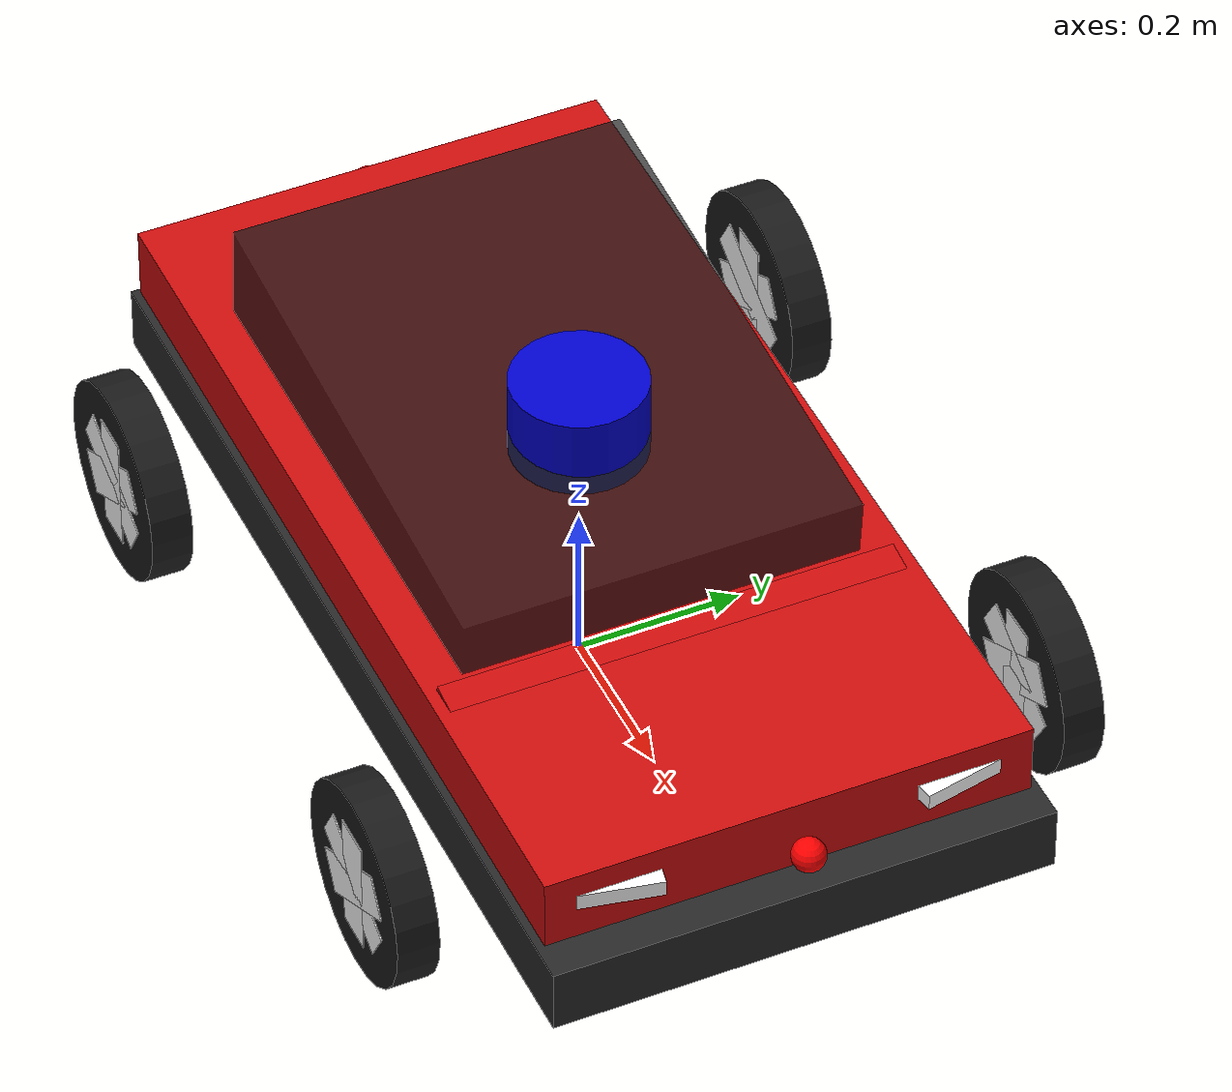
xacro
<?xml version="1.0"?>
<robot xmlns:xacro="http://ros.org/wiki/xacro" name="autocar">

  <!-- Parameters -->
  <xacro:property name="chassis_length" value="1.2"/>
  <xacro:property name="chassis_width"  value="0.6"/>
  <xacro:property name="chassis_height" value="0.2"/>
  <xacro:property name="wheel_radius"   value="0.12"/>
  <xacro:property name="wheel_width"    value="0.05"/>
  <xacro:property name="wheel_mass"     value="2.0"/>
  <xacro:property name="chassis_mass"   value="30.0"/>
  <!-- Global Materials -->
  <material name="dark_grey">
    <color rgba="0.15 0.15 0.15 1.0"/>
  </material>
  <material name="tesla_red">
    <color rgba="0.8 0.05 0.05 1.0"/>
  </material>
  <material name="glass">
    <color rgba="0.1 0.1 0.1 0.75"/>
  </material>
  <material name="white">
    <color rgba="1.0 1.0 1.0 1.0"/>
  </material>
  <material name="red">
    <color rgba="0.9 0.0 0.0 1.0"/>
  </material>
  <material name="black">
    <color rgba="0.1 0.1 0.1 1.0"/>
  </material>
  <material name="blue_lidar">
    <color rgba="0.0 0.0 0.8 1.0"/>
  </material>

  <!-- Base link (Chassis) -->
  <link name="base_link">
    <!-- Sleek Tesla-like Battery Skateboard Platform -->
    <visual>
      <origin xyz="0 0 0.12" rpy="0 0 0"/>
      <geometry>
        <box size="${chassis_length} ${chassis_width} 0.08"/>
      </geometry>
      <material name="dark_grey">
        <color rgba="0.15 0.15 0.15 1.0"/>
      </material>
    </visual>

    <!-- Keep same collision box to maintain exact footprint and safety boundaries -->
    <collision>
      <origin xyz="0 0 ${chassis_height/2+0.07}" rpy="0 0 0"/>
      <geometry>
        <box size="${chassis_length} ${chassis_width} ${chassis_height}"/>
      </geometry>
    </collision>

    <inertial>
      <origin xyz="0 0 0.17" rpy="0 0 0"/>
      <mass value="${chassis_mass}"/>
      <inertia ixx="1.0" iyy="3.7" izz="4.5"
               ixy="0.0" ixz="0.0" iyz="0.0"/>
    </inertial>
  </link>

  <!-- Aerodynamic Main Body Shell Link (Coloured Red in Gazebo) -->
  <link name="chassis_body_link">
    <!-- Aerodynamic Multi-coat Red Main Body Shell -->
    <visual>
      <origin xyz="-0.02 0 0.19" rpy="0 0 0"/>
      <geometry>
        <box size="1.15 ${chassis_width-0.02} 0.12"/>
      </geometry>
      <material name="tesla_red">
        <color rgba="0.8 0.05 0.05 1.0"/>
      </material>
    </visual>

    <!-- Sloped Sporty Passenger Cabin (Greenhouse Glass) -->
    <visual>
      <origin xyz="-0.10 0 0.28" rpy="0 0.08 0"/>
      <geometry>
        <box size="0.65 0.48 0.14"/>
      </geometry>
      <material name="glass">
        <color rgba="0.1 0.1 0.1 0.75"/>
      </material>
    </visual>

    <!-- Sleek Front Hood Sloped Panel -->
    <visual>
      <origin xyz="0.38 0 0.21" rpy="0 0.18 0"/>
      <geometry>
        <box size="0.30 ${chassis_width-0.05} 0.04"/>
      </geometry>
      <material name="tesla_red"/>
    </visual>

    <!-- Front Left Headlight (Tesla Signature LED strip look) -->
    <visual>
      <origin xyz="0.54 0.20 0.21" rpy="0 0 0.2"/>
      <geometry>
        <box size="0.05 0.10 0.02"/>
      </geometry>
      <material name="white">
        <color rgba="1.0 1.0 1.0 1.0"/>
      </material>
    </visual>

    <!-- Front Right Headlight -->
    <visual>
      <origin xyz="0.54 -0.20 0.21" rpy="0 0 -0.2"/>
      <geometry>
        <box size="0.05 0.10 0.02"/>
      </geometry>
      <material name="white"/>
    </visual>

    <!-- Rear Left Taillight -->
    <visual>
      <origin xyz="-0.58 0.22 0.21" rpy="0 0 0"/>
      <geometry>
        <box size="0.02 0.08 0.02"/>
      </geometry>
      <material name="red">
        <color rgba="0.9 0.0 0.0 1.0"/>
      </material>
    </visual>

    <!-- Rear Right Taillight -->
    <visual>
      <origin xyz="-0.58 -0.22 0.21" rpy="0 0 0"/>
      <geometry>
        <box size="0.02 0.08 0.02"/>
      </geometry>
      <material name="red"/>
    </visual>

    <inertial>
      <mass value="0.1"/>
      <origin xyz="0 0 0.19" rpy="0 0 0"/>
      <inertia ixx="0.0001" ixy="0.0" ixz="0.0" iyy="0.0001" iyz="0.0" izz="0.0001"/>
    </inertial>
  </link>

  <joint name="chassis_body_joint" type="fixed">
    <parent link="base_link"/>
    <child link="chassis_body_link"/>
    <origin xyz="0 0 0" rpy="0 0 0"/>
  </joint>

  <!-- Steering Knuckles (Front Left and Right) -->

  <!-- Front Left Steering Knuckle -->
  <link name="front_left_steering_link">
    <visual>
      <origin xyz="0 0 0" rpy="0 0 0"/>
      <geometry>
        <cylinder radius="0.025" length="0.08"/>
      </geometry>
      <material name="grey">
        <color rgba="0.4 0.4 0.4 1.0"/>
      </material>
    </visual>
    <inertial>
      <origin xyz="0 0 0" rpy="0 0 0"/>
      <mass value="0.5"/>
      <inertia ixx="0.00035" ixy="0.0" ixz="0.0" iyy="0.00035" iyz="0.0" izz="0.00015"/>
    </inertial>
  </link>

  <joint name="front_left_steering_joint" type="revolute">
    <parent link="base_link"/>
    <child link="front_left_steering_link"/>
    <origin xyz="0.35 0.40 ${wheel_radius}" rpy="0 0 0"/>
    <axis xyz="0 0 1"/>
    <limit lower="-0.785" upper="0.785" effort="80.0" velocity="4.0"/>
    <dynamics damping="3.0" friction="0.8"/>
  </joint>

  <!-- Front Right Steering Knuckle -->
  <link name="front_right_steering_link">
    <visual>
      <origin xyz="0 0 0" rpy="0 0 0"/>
      <geometry>
        <cylinder radius="0.025" length="0.08"/>
      </geometry>
      <material name="grey"/>
    </visual>
    <inertial>
      <origin xyz="0 0 0" rpy="0 0 0"/>
      <mass value="0.5"/>
      <inertia ixx="0.00035" ixy="0.0" ixz="0.0" iyy="0.00035" iyz="0.0" izz="0.00015"/>
    </inertial>
  </link>

  <joint name="front_right_steering_joint" type="revolute">
    <parent link="base_link"/>
    <child link="front_right_steering_link"/>
    <origin xyz="0.35 -0.40 ${wheel_radius}" rpy="0 0 0"/>
    <axis xyz="0 0 1"/>
    <limit lower="-0.785" upper="0.785" effort="80.0" velocity="4.0"/>
    <dynamics damping="3.0" friction="0.8"/>
  </joint>

  <!-- Wheels (4 independent rolling wheels) -->

  <xacro:macro name="wheel_link_macro" params="name">
    <link name="${name}_wheel">
      <visual>
        <!-- Tire -->
        <origin xyz="0 0 0" rpy="1.5708 0 0"/>
        <geometry>
          <cylinder radius="${wheel_radius}" length="${wheel_width}"/>
        </geometry>
        <material name="black">
          <color rgba="0.1 0.1 0.1 1.0"/>
        </material>
      </visual>

      <collision>
        <origin xyz="0 0 0" rpy="1.5708 0 0"/>
        <geometry>
          <cylinder radius="${wheel_radius}" length="${wheel_width}"/>
        </geometry>
      </collision>

      <inertial>
        <mass value="${wheel_mass}"/>
        <inertia ixx="0.0076" iyy="0.0144" izz="0.0076"
                 ixy="0.0" ixz="0.0" iyz="0.0"/>
      </inertial>
    </link>
  </xacro:macro>

  <xacro:macro name="alloy_link_macro" params="name">
    <link name="${name}_wheel_alloy">
      <!-- White Star (*) Spokes on Side A (y = 0.024) -->
      <visual>
        <origin xyz="0 0.024 0" rpy="1.5708 1.5708 0"/>
        <geometry>
          <box size="0.15 0.052 0.005"/>
        </geometry>
        <material name="white">
          <color rgba="1.0 1.0 1.0 1.0"/>
        </material>
      </visual>
      <visual>
        <origin xyz="0 0.024 0" rpy="1.5708 2.61799 0"/>
        <geometry>
          <box size="0.15 0.052 0.005"/>
        </geometry>
        <material name="white"/>
      </visual>
      <visual>
        <origin xyz="0 0.024 0" rpy="1.5708 0.523599 0"/>
        <geometry>
          <box size="0.15 0.052 0.005"/>
        </geometry>
        <material name="white"/>
      </visual>

      <!-- White Star (*) Spokes on Side B (y = -0.024) -->
      <visual>
        <origin xyz="0 -0.024 0" rpy="1.5708 1.5708 0"/>
        <geometry>
          <box size="0.15 0.052 0.005"/>
        </geometry>
        <material name="white"/>
      </visual>
      <visual>
        <origin xyz="0 -0.024 0" rpy="1.5708 2.61799 0"/>
        <geometry>
          <box size="0.15 0.052 0.005"/>
        </geometry>
        <material name="white"/>
      </visual>
      <visual>
        <origin xyz="0 -0.024 0" rpy="1.5708 0.523599 0"/>
        <geometry>
          <box size="0.15 0.052 0.005"/>
        </geometry>
        <material name="white"/>
      </visual>

      <inertial>
        <mass value="0.01"/>
        <inertia ixx="0.00001" iyy="0.00001" izz="0.00001"
                 ixy="0.0" ixz="0.0" iyz="0.0"/>
      </inertial>
    </link>

    <joint name="${name}_wheel_alloy_joint" type="fixed">
      <parent link="${name}_wheel"/>
      <child link="${name}_wheel_alloy"/>
      <origin xyz="0 0 0" rpy="0 0 0"/>
    </joint>

    <gazebo reference="${name}_wheel_alloy_joint">
      <preserveFixedJoint>true</preserveFixedJoint>
    </gazebo>
  </xacro:macro>

  <!-- Create the wheel and alloy links at all four places -->
  <xacro:wheel_link_macro name="front_left"/>
  <xacro:alloy_link_macro name="front_left"/>

  <xacro:wheel_link_macro name="front_right"/>
  <xacro:alloy_link_macro name="front_right"/>

  <xacro:wheel_link_macro name="rear_left"/>
  <xacro:alloy_link_macro name="rear_left"/>

  <xacro:wheel_link_macro name="rear_right"/>
  <xacro:alloy_link_macro name="rear_right"/>

  <!-- Wheel joints -->

  <!-- Front Left Wheel (attached to steering knuckle) -->
  <joint name="front_left_wheel_joint" type="continuous">
    <parent link="front_left_steering_link"/>
    <child link="front_left_wheel"/>
    <origin xyz="0 0 0" rpy="0 0 0"/>
    <axis xyz="0 1 0"/>
    <limit effort="100.0" velocity="15.0"/>
    <dynamics damping="1.5" friction="0.5"/>
  </joint>

  <!-- Front Right Wheel (attached to steering knuckle) -->
  <joint name="front_right_wheel_joint" type="continuous">
    <parent link="front_right_steering_link"/>
    <child link="front_right_wheel"/>
    <origin xyz="0 0 0" rpy="0 0 0"/>
    <axis xyz="0 1 0"/>
    <limit effort="100.0" velocity="15.0"/>
    <dynamics damping="1.5" friction="0.5"/>
  </joint>

  <!-- Rear Left Wheel (fixed steering, connected to base_link) -->
  <joint name="rear_left_wheel_joint" type="continuous">
    <parent link="base_link"/>
    <child link="rear_left_wheel"/>
    <origin xyz="-0.35 0.40 ${wheel_radius}" rpy="0 0 0"/>
    <axis xyz="0 1 0"/>
    <limit effort="100.0" velocity="15.0"/>
    <dynamics damping="1.5" friction="0.5"/>
  </joint>

  <!-- Rear Right Wheel (fixed steering, connected to base_link) -->
  <joint name="rear_right_wheel_joint" type="continuous">
    <parent link="base_link"/>
    <child link="rear_right_wheel"/>
    <origin xyz="-0.35 -0.40 ${wheel_radius}" rpy="0 0 0"/>
    <axis xyz="0 1 0"/>
    <limit effort="100.0" velocity="15.0"/>
    <dynamics damping="1.5" friction="0.5"/>
  </joint>

  <!-- Transmissions -->

  <!-- Front Left Steering Trans -->
  <transmission name="front_left_steering_trans">
    <type>transmission_interface/SimpleTransmission</type>
    <joint name="front_left_steering_joint">
      <hardwareInterface>hardware_interface/PositionJointInterface</hardwareInterface>
    </joint>
    <actuator name="front_left_steering_motor">
      <hardwareInterface>hardware_interface/PositionJointInterface</hardwareInterface>
      <mechanicalReduction>1</mechanicalReduction>
    </actuator>
  </transmission>

  <!-- Front Right Steering Trans -->
  <transmission name="front_right_steering_trans">
    <type>transmission_interface/SimpleTransmission</type>
    <joint name="front_right_steering_joint">
      <hardwareInterface>hardware_interface/PositionJointInterface</hardwareInterface>
    </joint>
    <actuator name="front_right_steering_motor">
      <hardwareInterface>hardware_interface/PositionJointInterface</hardwareInterface>
      <mechanicalReduction>1</mechanicalReduction>
    </actuator>
  </transmission>

  <!-- Front Left Wheel Trans -->
  <transmission name="front_left_trans">
    <type>transmission_interface/SimpleTransmission</type>
    <joint name="front_left_wheel_joint">
      <hardwareInterface>hardware_interface/VelocityJointInterface</hardwareInterface>
    </joint>
    <actuator name="front_left_motor">
      <hardwareInterface>hardware_interface/VelocityJointInterface</hardwareInterface>
      <mechanicalReduction>1</mechanicalReduction>
    </actuator>
  </transmission>

  <!-- Front Right Wheel Trans -->
  <transmission name="front_right_trans">
    <type>transmission_interface/SimpleTransmission</type>
    <joint name="front_right_wheel_joint">
      <hardwareInterface>hardware_interface/VelocityJointInterface</hardwareInterface>
    </joint>
    <actuator name="front_right_motor">
      <hardwareInterface>hardware_interface/VelocityJointInterface</hardwareInterface>
      <mechanicalReduction>1</mechanicalReduction>
    </actuator>
  </transmission>

  <!-- Rear Left Wheel Trans -->
  <transmission name="rear_left_trans">
    <type>transmission_interface/SimpleTransmission</type>
    <joint name="rear_left_wheel_joint">
      <hardwareInterface>hardware_interface/VelocityJointInterface</hardwareInterface>
    </joint>
    <actuator name="rear_left_motor">
      <hardwareInterface>hardware_interface/VelocityJointInterface</hardwareInterface>
      <mechanicalReduction>1</mechanicalReduction>
    </actuator>
  </transmission>

  <!-- Rear Right Wheel Trans -->
  <transmission name="rear_right_trans">
    <type>transmission_interface/SimpleTransmission</type>
    <joint name="rear_right_wheel_joint">
      <hardwareInterface>hardware_interface/VelocityJointInterface</hardwareInterface>
    </joint>
    <actuator name="rear_right_motor">
      <hardwareInterface>hardware_interface/VelocityJointInterface</hardwareInterface>
      <mechanicalReduction>1</mechanicalReduction>
    </actuator>
  </transmission>

  <!-- Sensors -->

  <!-- Front Camera -->
  <link name="front_camera_link">
    <visual>
      <origin xyz="0 0 0" rpy="0 0 0"/>
      <geometry>
        <sphere radius="0.02"/>
      </geometry>
      <material name="red_cam">
        <color rgba="1.0 0.0 0.0 1.0"/>
      </material>
    </visual>
    <inertial>
      <mass value="0.05"/>
      <origin xyz="0 0 0" rpy="0 0 0"/>
      <inertia ixx="8e-6" ixy="0" ixz="0" iyy="8e-6" iyz="0" izz="8e-6"/>
    </inertial>
  </link>

  <joint name="front_camera_joint" type="fixed">
    <parent link="base_link"/>
    <child link="front_camera_link"/>
    <origin xyz="0.6 0 0.22" rpy="0 0 0"/>
  </joint>

  <link name="front_camera_optical_link"/>
  <joint name="front_camera_optical_joint" type="fixed">
    <parent link="front_camera_link"/>
    <child link="front_camera_optical_link"/>
    <origin xyz="0 0 0" rpy="-1.5707963 0 -1.5707963"/>
  </joint>

  <gazebo reference="front_camera_link">
    <sensor type="camera" name="front_camera_sensor">
      <update_rate>30.0</update_rate>
      <camera name="front_camera">
        <horizontal_fov>1.3962634</horizontal_fov>
        <image>
          <width>640</width>
          <height>480</height>
          <format>R8G8B8</format>
        </image>
        <clip>
          <near>0.02</near>
          <far>300.0</far>
        </clip>
        <noise>
          <type>gaussian</type>
          <mean>0.0</mean>
          <stddev>0.007</stddev>
        </noise>
      </camera>
      <plugin name="camera_controller_front" filename="libgazebo_ros_camera.so">
        <alwaysOn>true</alwaysOn>
        <updateRate>0.0</updateRate>
        <cameraName>front_camera</cameraName>
        <imageTopicName>image_raw</imageTopicName>
        <cameraInfoTopicName>camera_info</cameraInfoTopicName>
        <frameName>front_camera_optical_link</frameName>
        <hackBaseline>0.07</hackBaseline>
        <distortionK1>0.0</distortionK1>
        <distortionK2>0.0</distortionK2>
        <distortionK3>0.0</distortionK3>
        <distortionT1>0.0</distortionT1>
        <distortionT2>0.0</distortionT2>
      </plugin>
    </sensor>
  </gazebo>

  <!-- Rear Camera -->
  <link name="rear_camera_link">
    <visual>
      <origin xyz="0 0 0" rpy="0 0 0"/>
      <geometry>
        <sphere radius="0.02"/>
      </geometry>
      <material name="red_cam"/>
    </visual>
    <inertial>
      <mass value="0.05"/>
      <origin xyz="0 0 0" rpy="0 0 0"/>
      <inertia ixx="8e-6" ixy="0" ixz="0" iyy="8e-6" iyz="0" izz="8e-6"/>
    </inertial>
  </link>

  <joint name="rear_camera_joint" type="fixed">
    <parent link="base_link"/>
    <child link="rear_camera_link"/>
    <origin xyz="-0.6 0 0.22" rpy="0 0 3.14159265"/>
  </joint>

  <link name="rear_camera_optical_link"/>
  <joint name="rear_camera_optical_joint" type="fixed">
    <parent link="rear_camera_link"/>
    <child link="rear_camera_optical_link"/>
    <origin xyz="0 0 0" rpy="-1.5707963 0 -1.5707963"/>
  </joint>

  <gazebo reference="rear_camera_link">
    <sensor type="camera" name="rear_camera_sensor">
      <update_rate>30.0</update_rate>
      <camera name="rear_camera">
        <horizontal_fov>1.3962634</horizontal_fov>
        <image>
          <width>640</width>
          <height>480</height>
          <format>R8G8B8</format>
        </image>
        <clip>
          <near>0.02</near>
          <far>300.0</far>
        </clip>
        <noise>
          <type>gaussian</type>
          <mean>0.0</mean>
          <stddev>0.007</stddev>
        </noise>
      </camera>
      <plugin name="camera_controller_rear" filename="libgazebo_ros_camera.so">
        <alwaysOn>true</alwaysOn>
        <updateRate>0.0</updateRate>
        <cameraName>rear_camera</cameraName>
        <imageTopicName>image_raw</imageTopicName>
        <cameraInfoTopicName>camera_info</cameraInfoTopicName>
        <frameName>rear_camera_optical_link</frameName>
        <hackBaseline>0.07</hackBaseline>
        <distortionK1>0.0</distortionK1>
        <distortionK2>0.0</distortionK2>
        <distortionK3>0.0</distortionK3>
        <distortionT1>0.0</distortionT1>
        <distortionT2>0.0</distortionT2>
      </plugin>
    </sensor>
  </gazebo>

  <!-- IMU -->
  <link name="imu_link"/>
  <joint name="imu_joint" type="fixed">
    <parent link="base_link"/>
    <child link="imu_link"/>
    <origin xyz="-0.3 0.1 ${chassis_height}" rpy="0 0 0"/>
  </joint>

  <!-- GAZEBO INTEGRATION -->

  <!-- Gazebo Material and Friction -->
  <gazebo reference="base_link">
    <material>Gazebo/Grey</material>
    <mu1>0.9</mu1>
    <mu2>0.9</mu2>
    <kp>1000000.0</kp>
    <kd>10.0</kd>
  </gazebo>

  <gazebo reference="chassis_body_joint">
    <preserveFixedJoint>true</preserveFixedJoint>
  </gazebo>

  <gazebo reference="chassis_body_link">
    <material>Gazebo/Red</material>
  </gazebo>

  <!-- Set high friction for steering wheels to prevent sliding/slipping -->
  <gazebo reference="front_left_wheel">
    <material>Gazebo/Black</material>
    <mu1>10.0</mu1>
    <mu2>10.0</mu2>
    <kp>1000000.0</kp>
    <kd>10.0</kd>
  </gazebo>
  <gazebo reference="front_left_wheel_alloy">
    <material>Gazebo/White</material>
  </gazebo>

  <gazebo reference="front_right_wheel">
    <material>Gazebo/Black</material>
    <mu1>10.0</mu1>
    <mu2>10.0</mu2>
    <kp>1000000.0</kp>
    <kd>10.0</kd>
  </gazebo>
  <gazebo reference="front_right_wheel_alloy">
    <material>Gazebo/White</material>
  </gazebo>

  <gazebo reference="rear_left_wheel">
    <material>Gazebo/Black</material>
    <mu1>10.0</mu1>
    <mu2>10.0</mu2>
    <kp>1000000.0</kp>
    <kd>10.0</kd>
  </gazebo>
  <gazebo reference="rear_left_wheel_alloy">
    <material>Gazebo/White</material>
  </gazebo>

  <gazebo reference="rear_right_wheel">
    <material>Gazebo/Black</material>
    <mu1>10.0</mu1>
    <mu2>10.0</mu2>
    <kp>1000000.0</kp>
    <kd>10.0</kd>
  </gazebo>
  <gazebo reference="rear_right_wheel_alloy">
    <material>Gazebo/White</material>
  </gazebo>

  <!-- ROS Control Plugin -->
  <gazebo>
    <plugin name="gazebo_ros_control" filename="libgazebo_ros_control.so">
      <robotNamespace>/</robotNamespace>
      <param name="robotSimType" value="gazebo_ros_control/DefaultRobotHWSim"/>
    </plugin>
  </gazebo>

  <!-- 3D LiDAR -->
  <link name="lidar_link">
    <inertial>
      <origin xyz="0 0 0" rpy="0 0 0"/>
      <mass value="0.5"/>
      <inertia ixx="0.0012" ixy="0.0" ixz="0.0" iyy="0.0012" iyz="0.0" izz="0.0016"/>
    </inertial>

    <visual>
      <origin xyz="0 0 0" rpy="0 0 0"/>
      <geometry>
        <cylinder radius="0.08" length="0.1"/>
      </geometry>
      <material name="blue_lidar"/>
    </visual>

    <collision>
      <origin xyz="0 0 0" rpy="0 0 0"/>
      <geometry>
        <cylinder radius="0.08" length="0.1"/>
      </geometry>
    </collision>
  </link>

  <joint name="lidar_joint" type="fixed">
    <parent link="base_link"/>
    <child link="lidar_link"/>
    <origin xyz="0.0 0 0.36" rpy="0 0 0"/>
  </joint>

  <!-- Gazebo 2D LiDAR Plugin -->
  <gazebo reference="lidar_link">
    <material>Gazebo/Blue</material>
    <sensor type="ray" name="laser_sensor">
      <pose>0 0 0 0 0 0</pose>
      <visualize>false</visualize>
      <update_rate>40</update_rate>
      <ray>
        <scan>
          <horizontal>
            <samples>720</samples>
            <resolution>1</resolution>
            <min_angle>-3.14159265</min_angle>
            <max_angle>3.14159265</max_angle>
          </horizontal>
        </scan>
        <range>
          <min>0.10</min>
          <max>30.0</max>
          <resolution>0.01</resolution>
        </range>
        <noise>
          <type>gaussian</type>
          <mean>0.0</mean>
          <stddev>0.01</stddev>
        </noise>
      </ray>
      <plugin name="gazebo_ros_head_hokuyo_controller" filename="libgazebo_ros_laser.so">
        <topicName>/scan</topicName>
        <frameName>lidar_link</frameName>
      </plugin>
    </sensor>
  </gazebo>

  <!-- Gazebo IMU Plugin -->
  <gazebo>
    <plugin name="imu_plugin" filename="libgazebo_ros_imu.so">
      <alwaysOn>true</alwaysOn>
      <bodyName>imu_link</bodyName>
      <topicName>imu/data</topicName>
      <serviceName>imu_service</serviceName>
      <gaussianNoise>0.005</gaussianNoise>
      <updateRate>50.0</updateRate>
    </plugin>
  </gazebo>

</robot>
